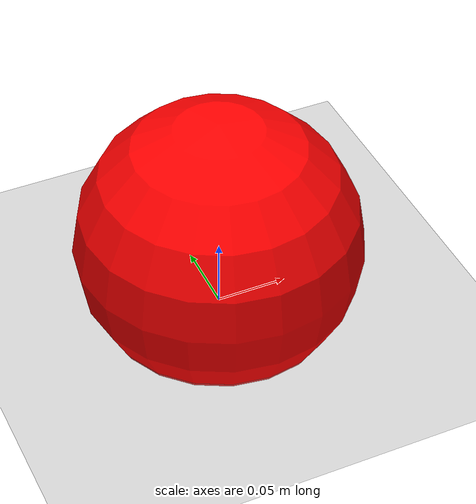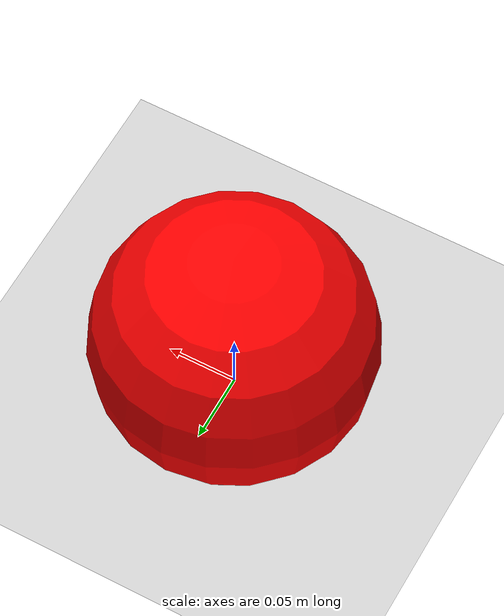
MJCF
<mujoco model="particle">
    <option timestep="0.005" />
    <worldbody>
        <geom name="floor" type="plane" size="2 2 2" pos="0 0 0"/>
        <geom type="plane" size="2 2 .005"/>
        <body name="agent" pos="0 0 0.055">
            <joint axis="1 0 0" damping="0.1" name="slide0" pos="0 0 0" type="slide"/>
            <joint axis="0 1 0" damping="0.1" name="slide1" pos="0 0 0" type="slide"/>
            <geom mass="1.0" pos="0 0 0" rgba="1 0 0 1" size="0.1" type="sphere"/>
        </body>
    </worldbody>
    <actuator>
        <motor gear="2000.0" joint="slide0"/>
        <motor gear="2000.0" joint="slide1"/>
    </actuator>
</mujoco>
